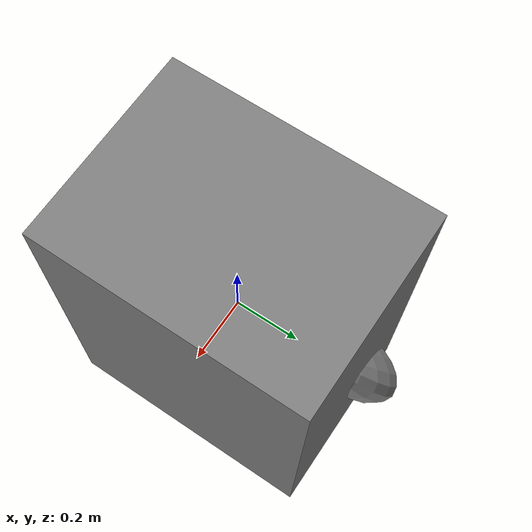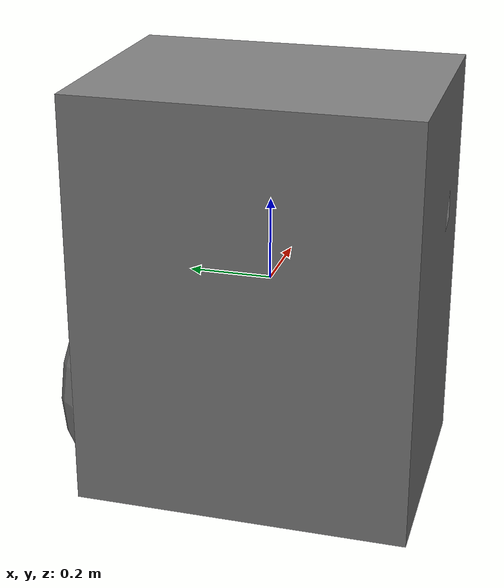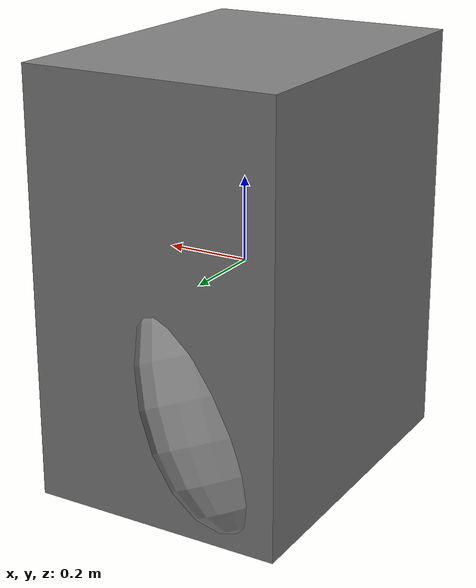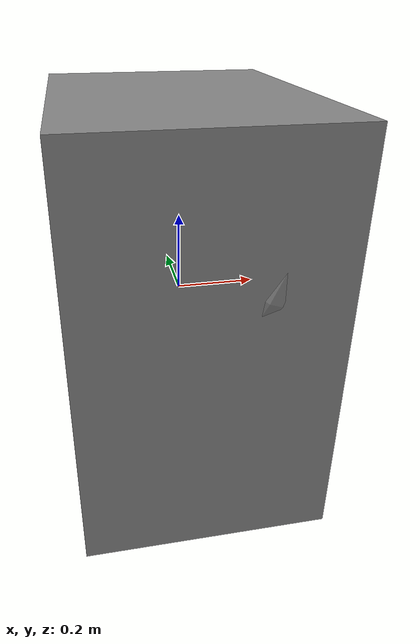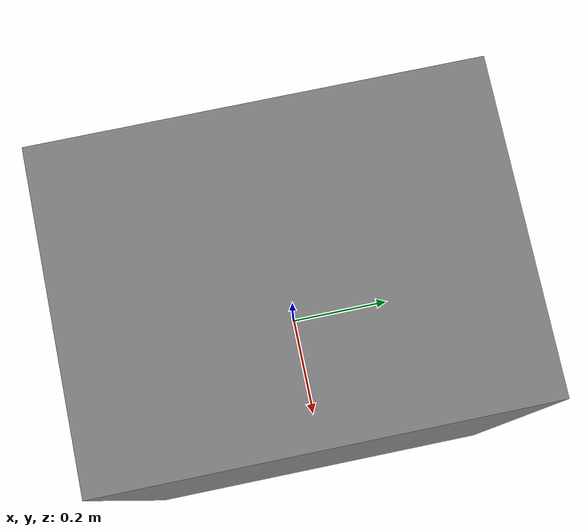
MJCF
<mujoco><compiler angle="radian"/>
    <option timestep="0.002" gravity="0 0 -9.81" integrator="Euler" density="1.225" viscosity=".013" wind=".4 -.3 .2">
      <flag constraint="disable" /></option>
    <worldbody><body><joint type="hinge" axis="1 2 -1" armature=".1"/><joint type="slide" axis="-1 2 1" armature=".1"/><joint type="hinge" axis="2 -1 3" pos=".3 -.2 .4" armature=".1"/><inertial pos=".17 -.12 .31" mass="2.3" diaginertia=".21 .32 .43" quat=".8 .2 -.3 .1"/><geom type="ellipsoid" size=".1 .2 .3" fluidshape="ellipsoid" fluidcoef="1 .5 1.5 1 .7" pos=".12 -.2 .1" quat=".9 .1 .2 -.1"/><geom type="ellipsoid" size=".1 .2 .3" fluidshape="ellipsoid" fluidcoef="1 .5 1.5 1 .7" pos="-.1 .3 -.2" quat=".9 .1 .2 -.1"/><geom type="box" size=".3 .4 .5"/></body></worldbody><actuator></actuator></mujoco>
